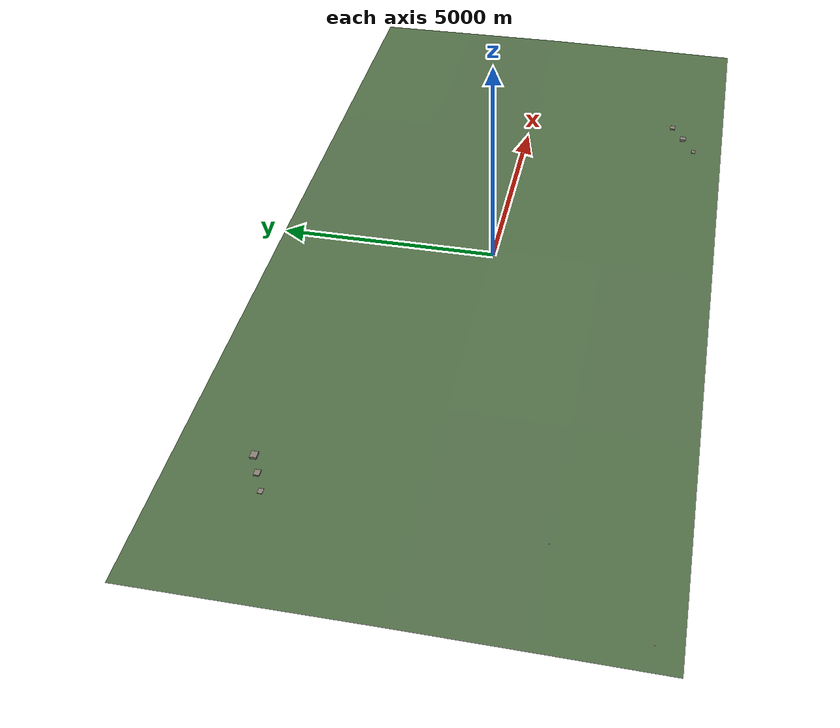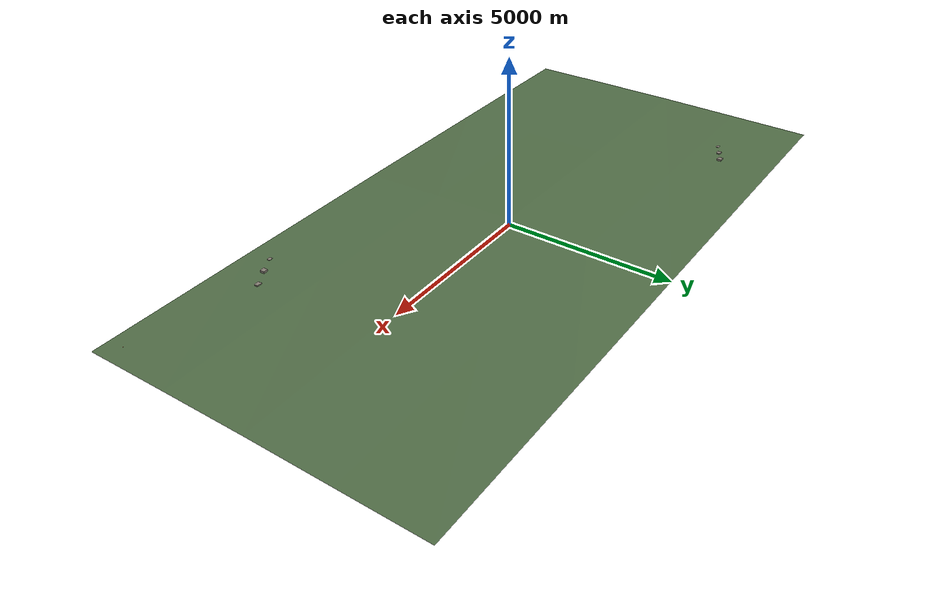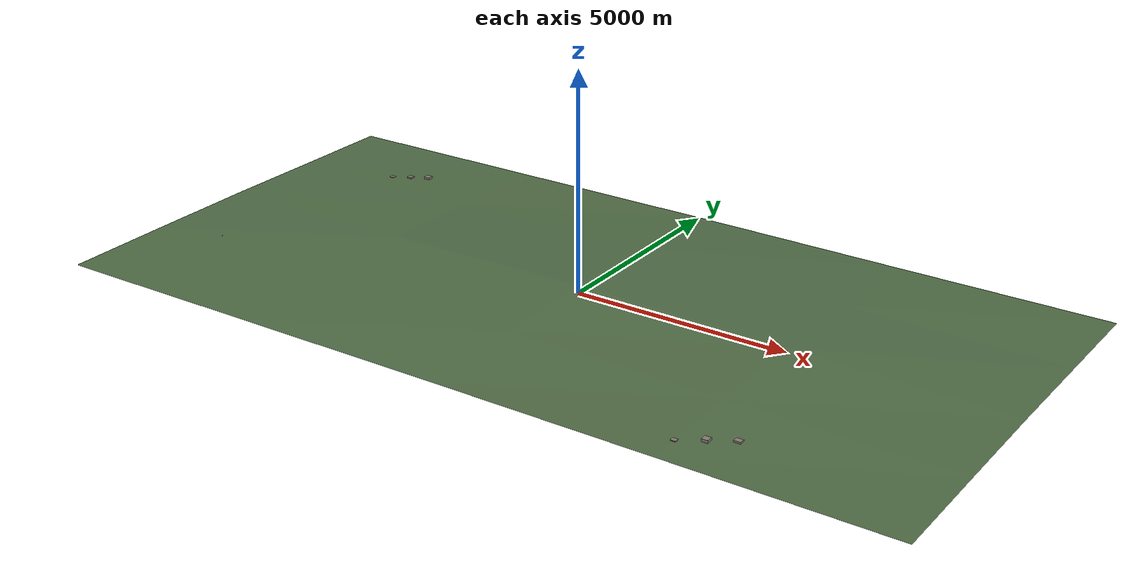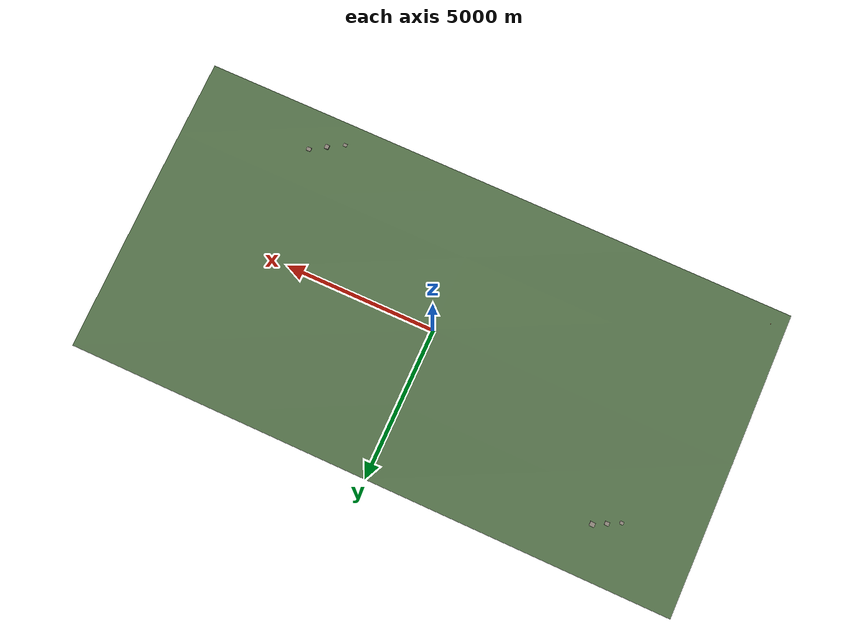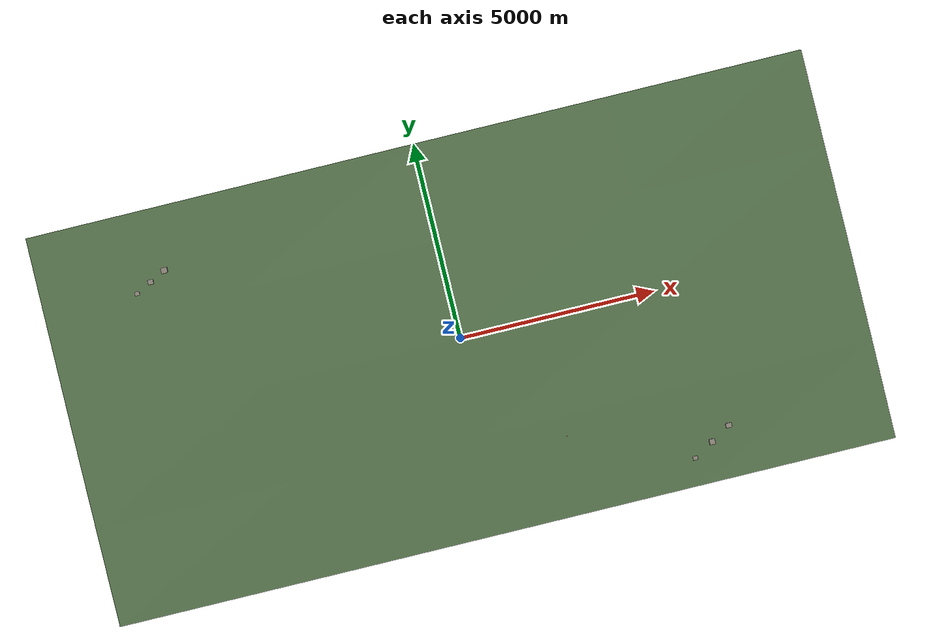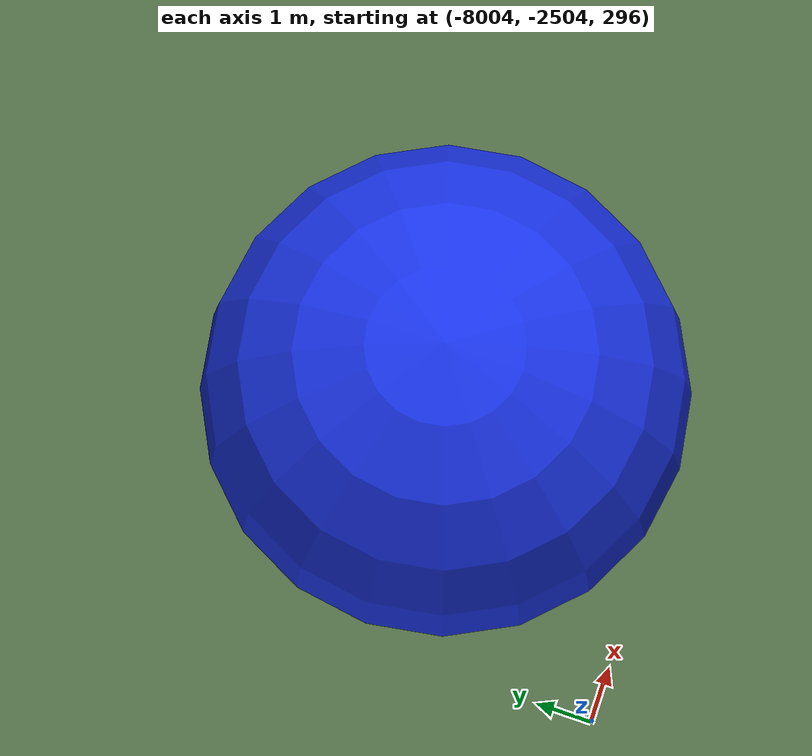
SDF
<?xml version="1.0" ?>
<sdf version="1.9">
  <world name="map">
    <physics name="m4_capacity_physics" type="bullet">
      <max_step_size>0.00125</max_step_size>
      <real_time_factor>1.0</real_time_factor>
      <real_time_update_rate>800</real_time_update_rate>
    </physics>
    <plugin filename="gz-sim-physics-system" name="gz::sim::systems::Physics">
      <engine><filename>gz-physics-bullet-featherstone-plugin</filename></engine>
    </plugin>
    <plugin filename="gz-sim-sensors-system" name="gz::sim::systems::Sensors"><render_engine>ogre2</render_engine></plugin>
    <plugin filename="gz-sim-user-commands-system" name="gz::sim::systems::UserCommands"/>
    <plugin filename="gz-sim-scene-broadcaster-system" name="gz::sim::systems::SceneBroadcaster"/>
    <plugin filename="gz-sim-air-pressure-system" name="gz::sim::systems::AirPressure"/>
    <plugin filename="gz-sim-air-speed-system" name="gz::sim::systems::AirSpeed"/>
    <plugin filename="gz-sim-altimeter-system" name="gz::sim::systems::Altimeter"/>
    <plugin filename="gz-sim-imu-system" name="gz::sim::systems::Imu"/>
    <plugin filename="gz-sim-magnetometer-system" name="gz::sim::systems::Magnetometer"/>
    <plugin filename="gz-sim-navsat-system" name="gz::sim::systems::NavSat"/>
    <scene><ambient>0.45 0.45 0.45</ambient><sky>true</sky></scene>
    <spherical_coordinates>
      <latitude_deg>-35.3632621</latitude_deg><longitude_deg>149.1652374</longitude_deg>
      <elevation>0.0</elevation><heading_deg>0</heading_deg><surface_model>EARTH_WGS84</surface_model>
    </spherical_coordinates>
    <light type="directional" name="sun"><cast_shadows>true</cast_shadows><pose>0 0 1000 0 0 0</pose><direction>-0.4 0.2 -0.9</direction></light>
    <model name="canonical_terrain"><static>true</static><link name="link">
      <collision name="collision"><geometry><mesh><uri>terrain.obj</uri></mesh></geometry></collision>
      <visual name="visual"><geometry><mesh><uri>terrain.obj</uri></mesh></geometry><material><ambient>0.25 0.32 0.22 1</ambient><diffuse>0.31 0.42 0.27 1</diffuse></material></visual>
    </link></model>
    <model name="canonical_buildings"><static>true</static><link name="link">
      <collision name="collision"><geometry><mesh><uri>buildings.obj</uri></mesh></geometry></collision>
      <visual name="visual"><geometry><mesh><uri>buildings.obj</uri></mesh></geometry><material><ambient>0.38 0.36 0.34 1</ambient><diffuse>0.52 0.49 0.45 1</diffuse></material></visual>
    </link></model>
    <model name="canonical_landmarks"><static>true</static><link name="link">
      <collision name="collision"><geometry><mesh><uri>landmarks.obj</uri></mesh></geometry></collision>
      <visual name="visual"><geometry><mesh><uri>landmarks.obj</uri></mesh></geometry><material><ambient>0.9 0.15 0.1 1</ambient><diffuse>0.9 0.15 0.1 1</diffuse></material></visual>
    </link></model>
    <model name="cp"><static>true</static><pose>-8000 -2500 300 0 0 0</pose><link name="link">
      <visual name="visual"><geometry><sphere><radius>4</radius></sphere></geometry><material><ambient>0.1 0.2 0.9 1</ambient><diffuse>0.1 0.2 0.9 1</diffuse></material></visual>
    </link></model>
    <model name="jammer_m4"><static>true</static><pose>2000 -3000 100 0 0 0</pose><link name="link">
      <visual name="visual"><geometry><cylinder><radius>3</radius><length>10</length></cylinder></geometry><material><ambient>0.9 0.1 0.1 1</ambient><diffuse>0.9 0.1 0.1 1</diffuse></material></visual>
    </link></model>
  </world>
</sdf>
